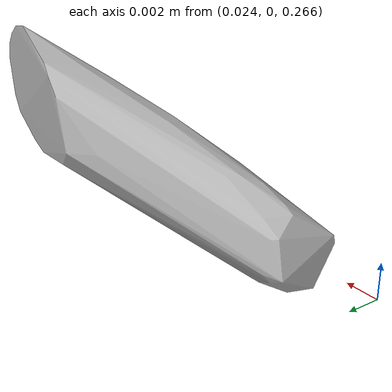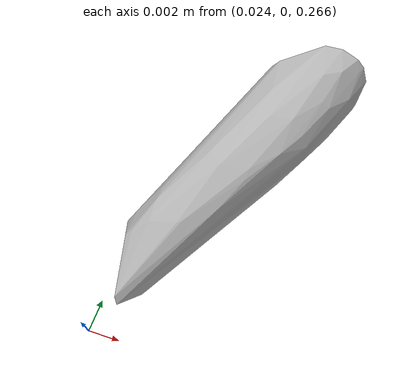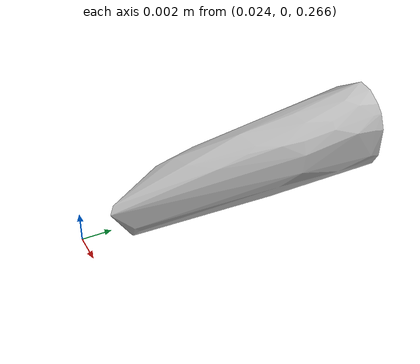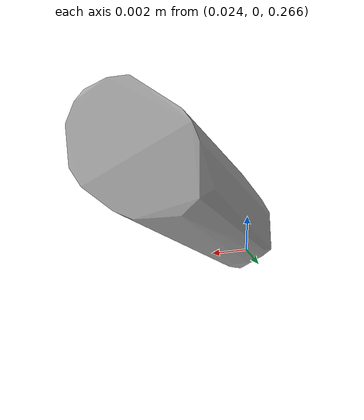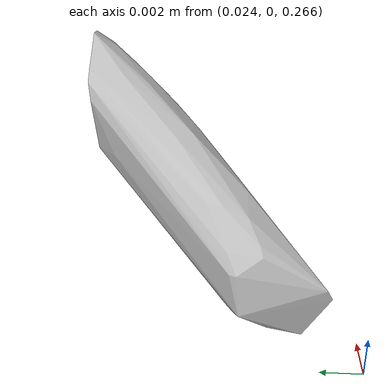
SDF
<?xml version="1.0"?>
<sdf version="1.7">
  <model name="vascular_partexport015">
    <link name="vascular_partexport015_body">
      <visual name="vascular_partexport015_visual">
        <geometry>
          <mesh>
            <uri>vascular_partexport015.obj</uri>
          </mesh>
        </geometry>
      </visual>
      <collision name="vascular_partexport015_collision">
        <geometry>
          <mesh>
            <uri>vascular_partexport015.obj</uri>
          </mesh>
        </geometry>
      </collision>
    </link>
    <frame name="vascular_partexport015_center">
      <pose relative_to="vascular_partexport015_body">0 0 0 0 0 0</pose>
    </frame>
  </model>
</sdf>
